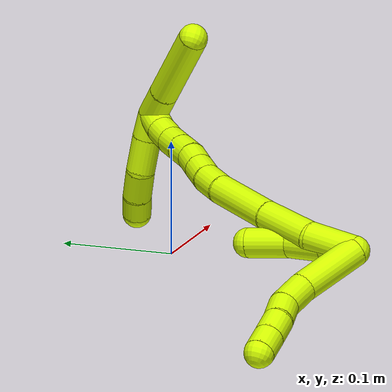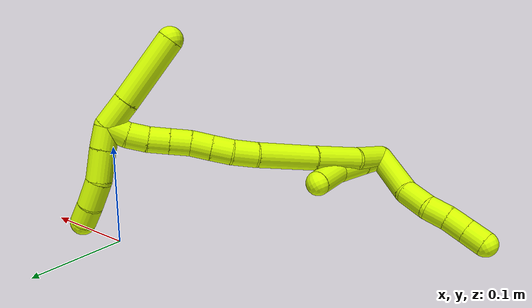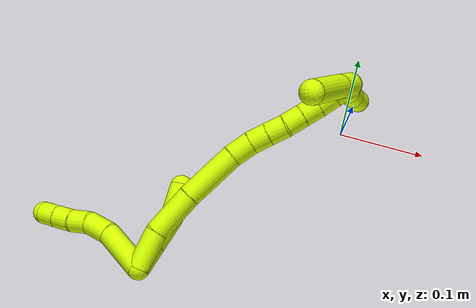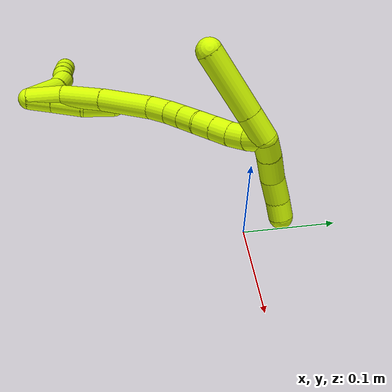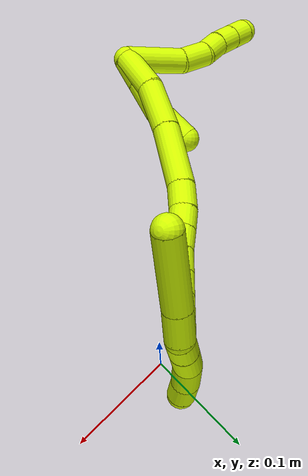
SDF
<sdf version="1.7">
 <world name="default">
  <model name="15">
   <static>0</static>
   <link name="15">
    <collision name="collision-cylinder-e_1_2_8">
     <pose>-0.009666 0.013799 -0.023662 -2.61364 -0.33924 1.12959</pose>
     <geometry><cylinder><radius>0.0125</radius><length>0.058095</length></cylinder></geometry>
     <surface>
      <friction><ode><mu>1.16</mu><mu2>1.16</mu2><slip1>0</slip1><slip2>0</slip2></ode></friction>
      <contact><ode><kp>1e+06</kp><kd>1</kd><max_vel>0</max_vel><min_depth>0.001</min_depth></ode></contact>
     </surface>
    </collision>
    <visual name="visual-cylinder-e_1_2_8">
     <pose>-0.009666 0.013799 -0.023662 -2.61364 -0.33924 1.12959</pose>
     <geometry><cylinder><radius>0.0125</radius><length>0.058095</length></cylinder></geometry>
     <material><ambient>0.835294 1 0 1</ambient></material>
    </visual>
    <collision name="collision-cylinder-e_2_8_9">
     <pose>-0.026833 0.030998 -0.058954 -2.85716 -0.554304 2.20898</pose>
     <geometry><cylinder><radius>0.0125</radius><length>0.0285</length></cylinder></geometry>
     <surface>
      <friction><ode><mu>1.16</mu><mu2>1.16</mu2><slip1>0</slip1><slip2>0</slip2></ode></friction>
      <contact><ode><kp>1e+06</kp><kd>1</kd><max_vel>0</max_vel><min_depth>0.001</min_depth></ode></contact>
     </surface>
    </collision>
    <visual name="visual-cylinder-e_2_8_9">
     <pose>-0.026833 0.030998 -0.058954 -2.85716 -0.554304 2.20898</pose>
     <geometry><cylinder><radius>0.0125</radius><length>0.0285</length></cylinder></geometry>
     <material><ambient>0.835294 1 0 1</ambient></material>
    </visual>
    <collision name="collision-cylinder-e_3_9_10">
     <pose>-0.040641 0.033321 -0.079476 3.02099 -0.613544 -2.76492</pose>
     <geometry><cylinder><radius>0.0125</radius><length>0.021911</length></cylinder></geometry>
     <surface>
      <friction><ode><mu>1.16</mu><mu2>1.16</mu2><slip1>0</slip1><slip2>0</slip2></ode></friction>
      <contact><ode><kp>1e+06</kp><kd>1</kd><max_vel>0</max_vel><min_depth>0.001</min_depth></ode></contact>
     </surface>
    </collision>
    <visual name="visual-cylinder-e_3_9_10">
     <pose>-0.040641 0.033321 -0.079476 3.02099 -0.613544 -2.76492</pose>
     <geometry><cylinder><radius>0.0125</radius><length>0.021911</length></cylinder></geometry>
     <material><ambient>0.835294 1 0 1</ambient></material>
    </visual>
    <collision name="collision-cylinder-e_4_10_11">
     <pose>-0.052317 0.032632 -0.097592 -3.09944 -0.52669 2.98552</pose>
     <geometry><cylinder><radius>0.0125</radius><length>0.021359</length></cylinder></geometry>
     <surface>
      <friction><ode><mu>1.16</mu><mu2>1.16</mu2><slip1>0</slip1><slip2>0</slip2></ode></friction>
      <contact><ode><kp>1e+06</kp><kd>1</kd><max_vel>0</max_vel><min_depth>0.001</min_depth></ode></contact>
     </surface>
    </collision>
    <visual name="visual-cylinder-e_4_10_11">
     <pose>-0.052317 0.032632 -0.097592 -3.09944 -0.52669 2.98552</pose>
     <geometry><cylinder><radius>0.0125</radius><length>0.021359</length></cylinder></geometry>
     <material><ambient>0.835294 1 0 1</ambient></material>
    </visual>
    <collision name="collision-cylinder-e_5_11_6">
     <pose>-0.062735 0.033508 -0.115512 -3.08562 -0.525369 2.93412</pose>
     <geometry><cylinder><radius>0.0125</radius><length>0.020135</length></cylinder></geometry>
     <surface>
      <friction><ode><mu>1.16</mu><mu2>1.16</mu2><slip1>0</slip1><slip2>0</slip2></ode></friction>
      <contact><ode><kp>1e+06</kp><kd>1</kd><max_vel>0</max_vel><min_depth>0.001</min_depth></ode></contact>
     </surface>
    </collision>
    <visual name="visual-cylinder-e_5_11_6">
     <pose>-0.062735 0.033508 -0.115512 -3.08562 -0.525369 2.93412</pose>
     <geometry><cylinder><radius>0.0125</radius><length>0.020135</length></cylinder></geometry>
     <material><ambient>0.835294 1 0 1</ambient></material>
    </visual>
    <collision name="collision-cylinder-e_1_2_12">
     <pose>0.005499 0.013215 0.000505 -1.53261 0.394069 -0.379661</pose>
     <geometry><cylinder><radius>0.0125</radius><length>0.028644</length></cylinder></geometry>
     <surface>
      <friction><ode><mu>1.16</mu><mu2>1.16</mu2><slip1>0</slip1><slip2>0</slip2></ode></friction>
      <contact><ode><kp>1e+06</kp><kd>1</kd><max_vel>0</max_vel><min_depth>0.001</min_depth></ode></contact>
     </surface>
    </collision>
    <visual name="visual-cylinder-e_1_2_12">
     <pose>0.005499 0.013215 0.000505 -1.53261 0.394069 -0.379661</pose>
     <geometry><cylinder><radius>0.0125</radius><length>0.028644</length></cylinder></geometry>
     <material><ambient>0.835294 1 0 1</ambient></material>
    </visual>
    <collision name="collision-cylinder-e_2_12_13">
     <pose>0.017895 0.042531 0.001423 -1.54515 0.404563 -0.394585</pose>
     <geometry><cylinder><radius>0.0125</radius><length>0.035043</length></cylinder></geometry>
     <surface>
      <friction><ode><mu>1.16</mu><mu2>1.16</mu2><slip1>0</slip1><slip2>0</slip2></ode></friction>
      <contact><ode><kp>1e+06</kp><kd>1</kd><max_vel>0</max_vel><min_depth>0.001</min_depth></ode></contact>
     </surface>
    </collision>
    <visual name="visual-cylinder-e_2_12_13">
     <pose>0.017895 0.042531 0.001423 -1.54515 0.404563 -0.394585</pose>
     <geometry><cylinder><radius>0.0125</radius><length>0.035043</length></cylinder></geometry>
     <material><ambient>0.835294 1 0 1</ambient></material>
    </visual>
    <collision name="collision-cylinder-e_3_13_5">
     <pose>0.028314 0.076167 -0.001294 -1.74745 0.195267 -0.232897</pose>
     <geometry><cylinder><radius>0.0125</radius><length>0.036313</length></cylinder></geometry>
     <surface>
      <friction><ode><mu>1.16</mu><mu2>1.16</mu2><slip1>0</slip1><slip2>0</slip2></ode></friction>
      <contact><ode><kp>1e+06</kp><kd>1</kd><max_vel>0</max_vel><min_depth>0.001</min_depth></ode></contact>
     </surface>
    </collision>
    <visual name="visual-cylinder-e_3_13_5">
     <pose>0.028314 0.076167 -0.001294 -1.74745 0.195267 -0.232897</pose>
     <geometry><cylinder><radius>0.0125</radius><length>0.036313</length></cylinder></geometry>
     <material><ambient>0.835294 1 0 1</ambient></material>
    </visual>
    <collision name="collision-cylinder-e_1_2_14">
     <pose>0.004404 0.020478 0.002913 -1.42949 0.209763 -0.182199</pose>
     <geometry><cylinder><radius>0.0125</radius><length>0.042296</length></cylinder></geometry>
     <surface>
      <friction><ode><mu>1.16</mu><mu2>1.16</mu2><slip1>0</slip1><slip2>0</slip2></ode></friction>
      <contact><ode><kp>1e+06</kp><kd>1</kd><max_vel>0</max_vel><min_depth>0.001</min_depth></ode></contact>
     </surface>
    </collision>
    <visual name="visual-cylinder-e_1_2_14">
     <pose>0.004404 0.020478 0.002913 -1.42949 0.209763 -0.182199</pose>
     <geometry><cylinder><radius>0.0125</radius><length>0.042296</length></cylinder></geometry>
     <material><ambient>0.835294 1 0 1</ambient></material>
    </visual>
    <collision name="collision-cylinder-e_2_14_15">
     <pose>0.018695 0.06279 0.013588 -1.22923 0.403324 -0.286616</pose>
     <geometry><cylinder><radius>0.0125</radius><length>0.050387</length></cylinder></geometry>
     <surface>
      <friction><ode><mu>1.16</mu><mu2>1.16</mu2><slip1>0</slip1><slip2>0</slip2></ode></friction>
      <contact><ode><kp>1e+06</kp><kd>1</kd><max_vel>0</max_vel><min_depth>0.001</min_depth></ode></contact>
     </surface>
    </collision>
    <visual name="visual-cylinder-e_2_14_15">
     <pose>0.018695 0.06279 0.013588 -1.22923 0.403324 -0.286616</pose>
     <geometry><cylinder><radius>0.0125</radius><length>0.050387</length></cylinder></geometry>
     <material><ambient>0.835294 1 0 1</ambient></material>
    </visual>
    <collision name="collision-cylinder-e_3_15_16">
     <pose>0.04254 0.109953 0.032412 -1.15903 0.467603 -0.309247</pose>
     <geometry><cylinder><radius>0.0125</radius><length>0.061926</length></cylinder></geometry>
     <surface>
      <friction><ode><mu>1.16</mu><mu2>1.16</mu2><slip1>0</slip1><slip2>0</slip2></ode></friction>
      <contact><ode><kp>1e+06</kp><kd>1</kd><max_vel>0</max_vel><min_depth>0.001</min_depth></ode></contact>
     </surface>
    </collision>
    <visual name="visual-cylinder-e_3_15_16">
     <pose>0.04254 0.109953 0.032412 -1.15903 0.467603 -0.309247</pose>
     <geometry><cylinder><radius>0.0125</radius><length>0.061926</length></cylinder></geometry>
     <material><ambient>0.835294 1 0 1</ambient></material>
    </visual>
    <collision name="collision-cylinder-e_4_16_17">
     <pose>0.062806 0.144051 0.048916 -1.01539 0.548791 -0.310688</pose>
     <geometry><cylinder><radius>0.0125</radius><length>0.024194</length></cylinder></geometry>
     <surface>
      <friction><ode><mu>1.16</mu><mu2>1.16</mu2><slip1>0</slip1><slip2>0</slip2></ode></friction>
      <contact><ode><kp>1e+06</kp><kd>1</kd><max_vel>0</max_vel><min_depth>0.001</min_depth></ode></contact>
     </surface>
    </collision>
    <visual name="visual-cylinder-e_4_16_17">
     <pose>0.062806 0.144051 0.048916 -1.01539 0.548791 -0.310688</pose>
     <geometry><cylinder><radius>0.0125</radius><length>0.024194</length></cylinder></geometry>
     <material><ambient>0.835294 1 0 1</ambient></material>
    </visual>
    <collision name="collision-cylinder-e_5_17_18">
     <pose>0.074762 0.159022 0.060162 -0.818494 0.586494 -0.260453</pose>
     <geometry><cylinder><radius>0.0125</radius><length>0.020398</length></cylinder></geometry>
     <surface>
      <friction><ode><mu>1.16</mu><mu2>1.16</mu2><slip1>0</slip1><slip2>0</slip2></ode></friction>
      <contact><ode><kp>1e+06</kp><kd>1</kd><max_vel>0</max_vel><min_depth>0.001</min_depth></ode></contact>
     </surface>
    </collision>
    <visual name="visual-cylinder-e_5_17_18">
     <pose>0.074762 0.159022 0.060162 -0.818494 0.586494 -0.260453</pose>
     <geometry><cylinder><radius>0.0125</radius><length>0.020398</length></cylinder></geometry>
     <material><ambient>0.835294 1 0 1</ambient></material>
    </visual>
    <collision name="collision-cylinder-e_6_18_19">
     <pose>0.085961 0.171235 0.071875 -0.793965 0.582727 -0.250147</pose>
     <geometry><cylinder><radius>0.0125</radius><length>0.020188</length></cylinder></geometry>
     <surface>
      <friction><ode><mu>1.16</mu><mu2>1.16</mu2><slip1>0</slip1><slip2>0</slip2></ode></friction>
      <contact><ode><kp>1e+06</kp><kd>1</kd><max_vel>0</max_vel><min_depth>0.001</min_depth></ode></contact>
     </surface>
    </collision>
    <visual name="visual-cylinder-e_6_18_19">
     <pose>0.085961 0.171235 0.071875 -0.793965 0.582727 -0.250147</pose>
     <geometry><cylinder><radius>0.0125</radius><length>0.020188</length></cylinder></geometry>
     <material><ambient>0.835294 1 0 1</ambient></material>
    </visual>
    <collision name="collision-cylinder-e_7_19_20">
     <pose>0.097415 0.184222 0.082386 -0.987695 0.614583 -0.338411</pose>
     <geometry><cylinder><radius>0.0125</radius><length>0.020461</length></cylinder></geometry>
     <surface>
      <friction><ode><mu>1.16</mu><mu2>1.16</mu2><slip1>0</slip1><slip2>0</slip2></ode></friction>
      <contact><ode><kp>1e+06</kp><kd>1</kd><max_vel>0</max_vel><min_depth>0.001</min_depth></ode></contact>
     </surface>
    </collision>
    <visual name="visual-cylinder-e_7_19_20">
     <pose>0.097415 0.184222 0.082386 -0.987695 0.614583 -0.338411</pose>
     <geometry><cylinder><radius>0.0125</radius><length>0.020461</length></cylinder></geometry>
     <material><ambient>0.835294 1 0 1</ambient></material>
    </visual>
    <collision name="collision-cylinder-e_8_20_21">
     <pose>0.109121 0.198033 0.091519 -0.985308 0.616267 -0.338429</pose>
     <geometry><cylinder><radius>0.0125</radius><length>0.020094</length></cylinder></geometry>
     <surface>
      <friction><ode><mu>1.16</mu><mu2>1.16</mu2><slip1>0</slip1><slip2>0</slip2></ode></friction>
      <contact><ode><kp>1e+06</kp><kd>1</kd><max_vel>0</max_vel><min_depth>0.001</min_depth></ode></contact>
     </surface>
    </collision>
    <visual name="visual-cylinder-e_8_20_21">
     <pose>0.109121 0.198033 0.091519 -0.985308 0.616267 -0.338429</pose>
     <geometry><cylinder><radius>0.0125</radius><length>0.020094</length></cylinder></geometry>
     <material><ambient>0.835294 1 0 1</ambient></material>
    </visual>
    <collision name="collision-cylinder-e_9_21_22">
     <pose>0.11974 0.21179 0.101445 -0.908837 0.501499 -0.248964</pose>
     <geometry><cylinder><radius>0.0125</radius><length>0.02002</length></cylinder></geometry>
     <surface>
      <friction><ode><mu>1.16</mu><mu2>1.16</mu2><slip1>0</slip1><slip2>0</slip2></ode></friction>
      <contact><ode><kp>1e+06</kp><kd>1</kd><max_vel>0</max_vel><min_depth>0.001</min_depth></ode></contact>
     </surface>
    </collision>
    <visual name="visual-cylinder-e_9_21_22">
     <pose>0.11974 0.21179 0.101445 -0.908837 0.501499 -0.248964</pose>
     <geometry><cylinder><radius>0.0125</radius><length>0.02002</length></cylinder></geometry>
     <material><ambient>0.835294 1 0 1</ambient></material>
    </visual>
    <collision name="collision-cylinder-e_10_22_1">
     <pose>0.127809 0.225311 0.113638 -0.770463 0.331096 -0.13529</pose>
     <geometry><cylinder><radius>0.0125</radius><length>0.020035</length></cylinder></geometry>
     <surface>
      <friction><ode><mu>1.16</mu><mu2>1.16</mu2><slip1>0</slip1><slip2>0</slip2></ode></friction>
      <contact><ode><kp>1e+06</kp><kd>1</kd><max_vel>0</max_vel><min_depth>0.001</min_depth></ode></contact>
     </surface>
    </collision>
    <visual name="visual-cylinder-e_10_22_1">
     <pose>0.127809 0.225311 0.113638 -0.770463 0.331096 -0.13529</pose>
     <geometry><cylinder><radius>0.0125</radius><length>0.020035</length></cylinder></geometry>
     <material><ambient>0.835294 1 0 1</ambient></material>
    </visual>
    <collision name="collision-cylinder-e_1_1_23">
     <pose>0.1186 0.226913 0.126647 0.677497 -1.00187 -0.381133</pose>
     <geometry><cylinder><radius>0.0125</radius><length>0.029592</length></cylinder></geometry>
     <surface>
      <friction><ode><mu>1.16</mu><mu2>1.16</mu2><slip1>0</slip1><slip2>0</slip2></ode></friction>
      <contact><ode><kp>1e+06</kp><kd>1</kd><max_vel>0</max_vel><min_depth>0.001</min_depth></ode></contact>
     </surface>
    </collision>
    <visual name="visual-cylinder-e_1_1_23">
     <pose>0.1186 0.226913 0.126647 0.677497 -1.00187 -0.381133</pose>
     <geometry><cylinder><radius>0.0125</radius><length>0.029592</length></cylinder></geometry>
     <material><ambient>0.835294 1 0 1</ambient></material>
    </visual>
    <collision name="collision-cylinder-e_2_23_4">
     <pose>0.07723 0.209822 0.148905 0.645853 -0.963303 -0.346337</pose>
     <geometry><cylinder><radius>0.0125</radius><length>0.070408</length></cylinder></geometry>
     <surface>
      <friction><ode><mu>1.16</mu><mu2>1.16</mu2><slip1>0</slip1><slip2>0</slip2></ode></friction>
      <contact><ode><kp>1e+06</kp><kd>1</kd><max_vel>0</max_vel><min_depth>0.001</min_depth></ode></contact>
     </surface>
    </collision>
    <visual name="visual-cylinder-e_2_23_4">
     <pose>0.07723 0.209822 0.148905 0.645853 -0.963303 -0.346337</pose>
     <geometry><cylinder><radius>0.0125</radius><length>0.070408</length></cylinder></geometry>
     <material><ambient>0.835294 1 0 1</ambient></material>
    </visual>
    <collision name="collision-cylinder-e_1_1_24">
     <pose>0.138152 0.232998 0.11238 -3.00724 0.716909 -2.78623</pose>
     <geometry><cylinder><radius>0.0125</radius><length>0.021569</length></cylinder></geometry>
     <surface>
      <friction><ode><mu>1.16</mu><mu2>1.16</mu2><slip1>0</slip1><slip2>0</slip2></ode></friction>
      <contact><ode><kp>1e+06</kp><kd>1</kd><max_vel>0</max_vel><min_depth>0.001</min_depth></ode></contact>
     </surface>
    </collision>
    <visual name="visual-cylinder-e_1_1_24">
     <pose>0.138152 0.232998 0.11238 -3.00724 0.716909 -2.78623</pose>
     <geometry><cylinder><radius>0.0125</radius><length>0.021569</length></cylinder></geometry>
     <material><ambient>0.835294 1 0 1</ambient></material>
    </visual>
    <collision name="collision-cylinder-e_2_24_25">
     <pose>0.155178 0.234679 0.092345 -3.09224 0.692074 -3.0049</pose>
     <geometry><cylinder><radius>0.0125</radius><length>0.031155</length></cylinder></geometry>
     <surface>
      <friction><ode><mu>1.16</mu><mu2>1.16</mu2><slip1>0</slip1><slip2>0</slip2></ode></friction>
      <contact><ode><kp>1e+06</kp><kd>1</kd><max_vel>0</max_vel><min_depth>0.001</min_depth></ode></contact>
     </surface>
    </collision>
    <visual name="visual-cylinder-e_2_24_25">
     <pose>0.155178 0.234679 0.092345 -3.09224 0.692074 -3.0049</pose>
     <geometry><cylinder><radius>0.0125</radius><length>0.031155</length></cylinder></geometry>
     <material><ambient>0.835294 1 0 1</ambient></material>
    </visual>
    <collision name="collision-cylinder-e_3_25_26">
     <pose>0.176289 0.236017 0.072621 -3.04555 0.962399 -2.95804</pose>
     <geometry><cylinder><radius>0.0125</radius><length>0.027226</length></cylinder></geometry>
     <surface>
      <friction><ode><mu>1.16</mu><mu2>1.16</mu2><slip1>0</slip1><slip2>0</slip2></ode></friction>
      <contact><ode><kp>1e+06</kp><kd>1</kd><max_vel>0</max_vel><min_depth>0.001</min_depth></ode></contact>
     </surface>
    </collision>
    <visual name="visual-cylinder-e_3_25_26">
     <pose>0.176289 0.236017 0.072621 -3.04555 0.962399 -2.95804</pose>
     <geometry><cylinder><radius>0.0125</radius><length>0.027226</length></cylinder></geometry>
     <material><ambient>0.835294 1 0 1</ambient></material>
    </visual>
    <collision name="collision-cylinder-e_4_26_3">
     <pose>0.196295 0.236709 0.060139 3.13016 1.07856 3.12248</pose>
     <geometry><cylinder><radius>0.0125</radius><length>0.02005</length></cylinder></geometry>
     <surface>
      <friction><ode><mu>1.16</mu><mu2>1.16</mu2><slip1>0</slip1><slip2>0</slip2></ode></friction>
      <contact><ode><kp>1e+06</kp><kd>1</kd><max_vel>0</max_vel><min_depth>0.001</min_depth></ode></contact>
     </surface>
    </collision>
    <visual name="visual-cylinder-e_4_26_3">
     <pose>0.196295 0.236709 0.060139 3.13016 1.07856 3.12248</pose>
     <geometry><cylinder><radius>0.0125</radius><length>0.02005</length></cylinder></geometry>
     <material><ambient>0.835294 1 0 1</ambient></material>
    </visual>
    <collision name="collision-sphere-3">
     <pose>0.205129 0.236654 0.055401 0 -0 0</pose>
     <geometry><sphere><radius>0.0125</radius></sphere></geometry>
     <surface>
      <friction><ode><mu>1.16</mu><mu2>1.16</mu2><slip1>0</slip1><slip2>0</slip2></ode></friction>
      <contact><ode><kp>1e+06</kp><kd>1</kd><max_vel>0</max_vel><min_depth>0.001</min_depth></ode></contact>
     </surface>
    </collision>
    <visual name="visual-sphere-3">
     <pose>0.205129 0.236654 0.055401 0 -0 0</pose>
     <geometry><sphere><radius>0.0125</radius></sphere></geometry>
     <material><ambient>0.835294 1 0 1</ambient></material>
    </visual>
    <collision name="collision-sphere-26">
     <pose>0.18746 0.236763 0.064876 0 -0 0</pose>
     <geometry><sphere><radius>0.0125</radius></sphere></geometry>
     <surface>
      <friction><ode><mu>1.16</mu><mu2>1.16</mu2><slip1>0</slip1><slip2>0</slip2></ode></friction>
      <contact><ode><kp>1e+06</kp><kd>1</kd><max_vel>0</max_vel><min_depth>0.001</min_depth></ode></contact>
     </surface>
    </collision>
    <visual name="visual-sphere-26">
     <pose>0.18746 0.236763 0.064876 0 -0 0</pose>
     <geometry><sphere><radius>0.0125</radius></sphere></geometry>
     <material><ambient>0.835294 1 0 1</ambient></material>
    </visual>
    <collision name="collision-sphere-25">
     <pose>0.165119 0.235271 0.080366 0 -0 0</pose>
     <geometry><sphere><radius>0.0125</radius></sphere></geometry>
     <surface>
      <friction><ode><mu>1.16</mu><mu2>1.16</mu2><slip1>0</slip1><slip2>0</slip2></ode></friction>
      <contact><ode><kp>1e+06</kp><kd>1</kd><max_vel>0</max_vel><min_depth>0.001</min_depth></ode></contact>
     </surface>
    </collision>
    <visual name="visual-sphere-25">
     <pose>0.165119 0.235271 0.080366 0 -0 0</pose>
     <geometry><sphere><radius>0.0125</radius></sphere></geometry>
     <material><ambient>0.835294 1 0 1</ambient></material>
    </visual>
    <collision name="collision-sphere-24">
     <pose>0.145238 0.234087 0.104323 0 -0 0</pose>
     <geometry><sphere><radius>0.0125</radius></sphere></geometry>
     <surface>
      <friction><ode><mu>1.16</mu><mu2>1.16</mu2><slip1>0</slip1><slip2>0</slip2></ode></friction>
      <contact><ode><kp>1e+06</kp><kd>1</kd><max_vel>0</max_vel><min_depth>0.001</min_depth></ode></contact>
     </surface>
    </collision>
    <visual name="visual-sphere-24">
     <pose>0.145238 0.234087 0.104323 0 -0 0</pose>
     <geometry><sphere><radius>0.0125</radius></sphere></geometry>
     <material><ambient>0.835294 1 0 1</ambient></material>
    </visual>
    <collision name="collision-sphere-4">
     <pose>0.048324 0.197727 0.164952 0 -0 0</pose>
     <geometry><sphere><radius>0.0125</radius></sphere></geometry>
     <surface>
      <friction><ode><mu>1.16</mu><mu2>1.16</mu2><slip1>0</slip1><slip2>0</slip2></ode></friction>
      <contact><ode><kp>1e+06</kp><kd>1</kd><max_vel>0</max_vel><min_depth>0.001</min_depth></ode></contact>
     </surface>
    </collision>
    <visual name="visual-sphere-4">
     <pose>0.048324 0.197727 0.164952 0 -0 0</pose>
     <geometry><sphere><radius>0.0125</radius></sphere></geometry>
     <material><ambient>0.835294 1 0 1</ambient></material>
    </visual>
    <collision name="collision-sphere-23">
     <pose>0.106135 0.221916 0.132857 0 -0 0</pose>
     <geometry><sphere><radius>0.0125</radius></sphere></geometry>
     <surface>
      <friction><ode><mu>1.16</mu><mu2>1.16</mu2><slip1>0</slip1><slip2>0</slip2></ode></friction>
      <contact><ode><kp>1e+06</kp><kd>1</kd><max_vel>0</max_vel><min_depth>0.001</min_depth></ode></contact>
     </surface>
    </collision>
    <visual name="visual-sphere-23">
     <pose>0.106135 0.221916 0.132857 0 -0 0</pose>
     <geometry><sphere><radius>0.0125</radius></sphere></geometry>
     <material><ambient>0.835294 1 0 1</ambient></material>
    </visual>
    <collision name="collision-sphere-1">
     <pose>0.131066 0.231909 0.120436 0 -0 0</pose>
     <geometry><sphere><radius>0.0125</radius></sphere></geometry>
     <surface>
      <friction><ode><mu>1.16</mu><mu2>1.16</mu2><slip1>0</slip1><slip2>0</slip2></ode></friction>
      <contact><ode><kp>1e+06</kp><kd>1</kd><max_vel>0</max_vel><min_depth>0.001</min_depth></ode></contact>
     </surface>
    </collision>
    <visual name="visual-sphere-1">
     <pose>0.131066 0.231909 0.120436 0 -0 0</pose>
     <geometry><sphere><radius>0.0125</radius></sphere></geometry>
     <material><ambient>0.835294 1 0 1</ambient></material>
    </visual>
    <collision name="collision-sphere-22">
     <pose>0.124553 0.218713 0.10684 0 -0 0</pose>
     <geometry><sphere><radius>0.0125</radius></sphere></geometry>
     <surface>
      <friction><ode><mu>1.16</mu><mu2>1.16</mu2><slip1>0</slip1><slip2>0</slip2></ode></friction>
      <contact><ode><kp>1e+06</kp><kd>1</kd><max_vel>0</max_vel><min_depth>0.001</min_depth></ode></contact>
     </surface>
    </collision>
    <visual name="visual-sphere-22">
     <pose>0.124553 0.218713 0.10684 0 -0 0</pose>
     <geometry><sphere><radius>0.0125</radius></sphere></geometry>
     <material><ambient>0.835294 1 0 1</ambient></material>
    </visual>
    <collision name="collision-sphere-21">
     <pose>0.114928 0.204866 0.09605 0 -0 0</pose>
     <geometry><sphere><radius>0.0125</radius></sphere></geometry>
     <surface>
      <friction><ode><mu>1.16</mu><mu2>1.16</mu2><slip1>0</slip1><slip2>0</slip2></ode></friction>
      <contact><ode><kp>1e+06</kp><kd>1</kd><max_vel>0</max_vel><min_depth>0.001</min_depth></ode></contact>
     </surface>
    </collision>
    <visual name="visual-sphere-21">
     <pose>0.114928 0.204866 0.09605 0 -0 0</pose>
     <geometry><sphere><radius>0.0125</radius></sphere></geometry>
     <material><ambient>0.835294 1 0 1</ambient></material>
    </visual>
    <collision name="collision-sphere-6">
     <pose>-0.067784 0.033996 -0.124208 0 -0 0</pose>
     <geometry><sphere><radius>0.0125</radius></sphere></geometry>
     <surface>
      <friction><ode><mu>1.16</mu><mu2>1.16</mu2><slip1>0</slip1><slip2>0</slip2></ode></friction>
      <contact><ode><kp>1e+06</kp><kd>1</kd><max_vel>0</max_vel><min_depth>0.001</min_depth></ode></contact>
     </surface>
    </collision>
    <visual name="visual-sphere-6">
     <pose>-0.067784 0.033996 -0.124208 0 -0 0</pose>
     <geometry><sphere><radius>0.0125</radius></sphere></geometry>
     <material><ambient>0.835294 1 0 1</ambient></material>
    </visual>
    <collision name="collision-sphere-11">
     <pose>-0.057686 0.033021 -0.106816 0 -0 0</pose>
     <geometry><sphere><radius>0.0125</radius></sphere></geometry>
     <surface>
      <friction><ode><mu>1.16</mu><mu2>1.16</mu2><slip1>0</slip1><slip2>0</slip2></ode></friction>
      <contact><ode><kp>1e+06</kp><kd>1</kd><max_vel>0</max_vel><min_depth>0.001</min_depth></ode></contact>
     </surface>
    </collision>
    <visual name="visual-sphere-11">
     <pose>-0.057686 0.033021 -0.106816 0 -0 0</pose>
     <geometry><sphere><radius>0.0125</radius></sphere></geometry>
     <material><ambient>0.835294 1 0 1</ambient></material>
    </visual>
    <collision name="collision-sphere-10">
     <pose>-0.046949 0.032243 -0.088368 0 -0 0</pose>
     <geometry><sphere><radius>0.0125</radius></sphere></geometry>
     <surface>
      <friction><ode><mu>1.16</mu><mu2>1.16</mu2><slip1>0</slip1><slip2>0</slip2></ode></friction>
      <contact><ode><kp>1e+06</kp><kd>1</kd><max_vel>0</max_vel><min_depth>0.001</min_depth></ode></contact>
     </surface>
    </collision>
    <visual name="visual-sphere-10">
     <pose>-0.046949 0.032243 -0.088368 0 -0 0</pose>
     <geometry><sphere><radius>0.0125</radius></sphere></geometry>
     <material><ambient>0.835294 1 0 1</ambient></material>
    </visual>
    <collision name="collision-sphere-9">
     <pose>-0.034333 0.034398 -0.070584 0 -0 0</pose>
     <geometry><sphere><radius>0.0125</radius></sphere></geometry>
     <surface>
      <friction><ode><mu>1.16</mu><mu2>1.16</mu2><slip1>0</slip1><slip2>0</slip2></ode></friction>
      <contact><ode><kp>1e+06</kp><kd>1</kd><max_vel>0</max_vel><min_depth>0.001</min_depth></ode></contact>
     </surface>
    </collision>
    <visual name="visual-sphere-9">
     <pose>-0.034333 0.034398 -0.070584 0 -0 0</pose>
     <geometry><sphere><radius>0.0125</radius></sphere></geometry>
     <material><ambient>0.835294 1 0 1</ambient></material>
    </visual>
    <collision name="collision-sphere-2">
     <geometry><sphere><radius>0.0125</radius></sphere></geometry>
     <surface>
      <friction><ode><mu>1.16</mu><mu2>1.16</mu2><slip1>0</slip1><slip2>0</slip2></ode></friction>
      <contact><ode><kp>1e+06</kp><kd>1</kd><max_vel>0</max_vel><min_depth>0.001</min_depth></ode></contact>
     </surface>
    </collision>
    <visual name="visual-sphere-2">
     <geometry><sphere><radius>0.0125</radius></sphere></geometry>
     <material><ambient>0.835294 1 0 1</ambient></material>
    </visual>
    <collision name="collision-sphere-19">
     <pose>0.091516 0.177245 0.077784 0 -0 0</pose>
     <geometry><sphere><radius>0.0125</radius></sphere></geometry>
     <surface>
      <friction><ode><mu>1.16</mu><mu2>1.16</mu2><slip1>0</slip1><slip2>0</slip2></ode></friction>
      <contact><ode><kp>1e+06</kp><kd>1</kd><max_vel>0</max_vel><min_depth>0.001</min_depth></ode></contact>
     </surface>
    </collision>
    <visual name="visual-sphere-19">
     <pose>0.091516 0.177245 0.077784 0 -0 0</pose>
     <geometry><sphere><radius>0.0125</radius></sphere></geometry>
     <material><ambient>0.835294 1 0 1</ambient></material>
    </visual>
    <collision name="collision-sphere-8">
     <pose>-0.019332 0.027598 -0.047325 0 -0 0</pose>
     <geometry><sphere><radius>0.0125</radius></sphere></geometry>
     <surface>
      <friction><ode><mu>1.16</mu><mu2>1.16</mu2><slip1>0</slip1><slip2>0</slip2></ode></friction>
      <contact><ode><kp>1e+06</kp><kd>1</kd><max_vel>0</max_vel><min_depth>0.001</min_depth></ode></contact>
     </surface>
    </collision>
    <visual name="visual-sphere-8">
     <pose>-0.019332 0.027598 -0.047325 0 -0 0</pose>
     <geometry><sphere><radius>0.0125</radius></sphere></geometry>
     <material><ambient>0.835294 1 0 1</ambient></material>
    </visual>
    <collision name="collision-sphere-12">
     <pose>0.010998 0.02643 0.00101 0 -0 0</pose>
     <geometry><sphere><radius>0.0125</radius></sphere></geometry>
     <surface>
      <friction><ode><mu>1.16</mu><mu2>1.16</mu2><slip1>0</slip1><slip2>0</slip2></ode></friction>
      <contact><ode><kp>1e+06</kp><kd>1</kd><max_vel>0</max_vel><min_depth>0.001</min_depth></ode></contact>
     </surface>
    </collision>
    <visual name="visual-sphere-12">
     <pose>0.010998 0.02643 0.00101 0 -0 0</pose>
     <geometry><sphere><radius>0.0125</radius></sphere></geometry>
     <material><ambient>0.835294 1 0 1</ambient></material>
    </visual>
    <collision name="collision-sphere-13">
     <pose>0.024791 0.058633 0.001836 0 -0 0</pose>
     <geometry><sphere><radius>0.0125</radius></sphere></geometry>
     <surface>
      <friction><ode><mu>1.16</mu><mu2>1.16</mu2><slip1>0</slip1><slip2>0</slip2></ode></friction>
      <contact><ode><kp>1e+06</kp><kd>1</kd><max_vel>0</max_vel><min_depth>0.001</min_depth></ode></contact>
     </surface>
    </collision>
    <visual name="visual-sphere-13">
     <pose>0.024791 0.058633 0.001836 0 -0 0</pose>
     <geometry><sphere><radius>0.0125</radius></sphere></geometry>
     <material><ambient>0.835294 1 0 1</ambient></material>
    </visual>
    <collision name="collision-sphere-5">
     <pose>0.031837 0.093701 -0.004425 0 -0 0</pose>
     <geometry><sphere><radius>0.0125</radius></sphere></geometry>
     <surface>
      <friction><ode><mu>1.16</mu><mu2>1.16</mu2><slip1>0</slip1><slip2>0</slip2></ode></friction>
      <contact><ode><kp>1e+06</kp><kd>1</kd><max_vel>0</max_vel><min_depth>0.001</min_depth></ode></contact>
     </surface>
    </collision>
    <visual name="visual-sphere-5">
     <pose>0.031837 0.093701 -0.004425 0 -0 0</pose>
     <geometry><sphere><radius>0.0125</radius></sphere></geometry>
     <material><ambient>0.835294 1 0 1</ambient></material>
    </visual>
    <collision name="collision-sphere-14">
     <pose>0.008807 0.040957 0.005826 0 -0 0</pose>
     <geometry><sphere><radius>0.0125</radius></sphere></geometry>
     <surface>
      <friction><ode><mu>1.16</mu><mu2>1.16</mu2><slip1>0</slip1><slip2>0</slip2></ode></friction>
      <contact><ode><kp>1e+06</kp><kd>1</kd><max_vel>0</max_vel><min_depth>0.001</min_depth></ode></contact>
     </surface>
    </collision>
    <visual name="visual-sphere-14">
     <pose>0.008807 0.040957 0.005826 0 -0 0</pose>
     <geometry><sphere><radius>0.0125</radius></sphere></geometry>
     <material><ambient>0.835294 1 0 1</ambient></material>
    </visual>
    <collision name="collision-sphere-15">
     <pose>0.028583 0.084624 0.02135 0 -0 0</pose>
     <geometry><sphere><radius>0.0125</radius></sphere></geometry>
     <surface>
      <friction><ode><mu>1.16</mu><mu2>1.16</mu2><slip1>0</slip1><slip2>0</slip2></ode></friction>
      <contact><ode><kp>1e+06</kp><kd>1</kd><max_vel>0</max_vel><min_depth>0.001</min_depth></ode></contact>
     </surface>
    </collision>
    <visual name="visual-sphere-15">
     <pose>0.028583 0.084624 0.02135 0 -0 0</pose>
     <geometry><sphere><radius>0.0125</radius></sphere></geometry>
     <material><ambient>0.835294 1 0 1</ambient></material>
    </visual>
    <collision name="collision-sphere-16">
     <pose>0.056496 0.135281 0.043474 0 -0 0</pose>
     <geometry><sphere><radius>0.0125</radius></sphere></geometry>
     <surface>
      <friction><ode><mu>1.16</mu><mu2>1.16</mu2><slip1>0</slip1><slip2>0</slip2></ode></friction>
      <contact><ode><kp>1e+06</kp><kd>1</kd><max_vel>0</max_vel><min_depth>0.001</min_depth></ode></contact>
     </surface>
    </collision>
    <visual name="visual-sphere-16">
     <pose>0.056496 0.135281 0.043474 0 -0 0</pose>
     <geometry><sphere><radius>0.0125</radius></sphere></geometry>
     <material><ambient>0.835294 1 0 1</ambient></material>
    </visual>
    <collision name="collision-sphere-17">
     <pose>0.069117 0.15282 0.054358 0 -0 0</pose>
     <geometry><sphere><radius>0.0125</radius></sphere></geometry>
     <surface>
      <friction><ode><mu>1.16</mu><mu2>1.16</mu2><slip1>0</slip1><slip2>0</slip2></ode></friction>
      <contact><ode><kp>1e+06</kp><kd>1</kd><max_vel>0</max_vel><min_depth>0.001</min_depth></ode></contact>
     </surface>
    </collision>
    <visual name="visual-sphere-17">
     <pose>0.069117 0.15282 0.054358 0 -0 0</pose>
     <geometry><sphere><radius>0.0125</radius></sphere></geometry>
     <material><ambient>0.835294 1 0 1</ambient></material>
    </visual>
    <collision name="collision-sphere-18">
     <pose>0.080406 0.165224 0.065967 0 -0 0</pose>
     <geometry><sphere><radius>0.0125</radius></sphere></geometry>
     <surface>
      <friction><ode><mu>1.16</mu><mu2>1.16</mu2><slip1>0</slip1><slip2>0</slip2></ode></friction>
      <contact><ode><kp>1e+06</kp><kd>1</kd><max_vel>0</max_vel><min_depth>0.001</min_depth></ode></contact>
     </surface>
    </collision>
    <visual name="visual-sphere-18">
     <pose>0.080406 0.165224 0.065967 0 -0 0</pose>
     <geometry><sphere><radius>0.0125</radius></sphere></geometry>
     <material><ambient>0.835294 1 0 1</ambient></material>
    </visual>
    <collision name="collision-sphere-20">
     <pose>0.103314 0.1912 0.086988 0 -0 0</pose>
     <geometry><sphere><radius>0.0125</radius></sphere></geometry>
     <surface>
      <friction><ode><mu>1.16</mu><mu2>1.16</mu2><slip1>0</slip1><slip2>0</slip2></ode></friction>
      <contact><ode><kp>1e+06</kp><kd>1</kd><max_vel>0</max_vel><min_depth>0.001</min_depth></ode></contact>
     </surface>
    </collision>
    <visual name="visual-sphere-20">
     <pose>0.103314 0.1912 0.086988 0 -0 0</pose>
     <geometry><sphere><radius>0.0125</radius></sphere></geometry>
     <material><ambient>0.835294 1 0 1</ambient></material>
    </visual>
    <inertial>
     <pose>0.053865 0.121261 0.037381 0 -0 0</pose>
     <mass>0.75</mass>
     <inertia><ixx>7.3e-05</ixx><ixy>0</ixy><ixz>0</ixz><iyy>9e-05</iyy><iyz>0</iyz><izz>-5.1e-05</izz></inertia>
    </inertial>
   </link>
   <pose>-0.173665 -0.222496 0.069466 0.208621 0.635622 0.182915</pose>
  </model>
 </world>
</sdf>
